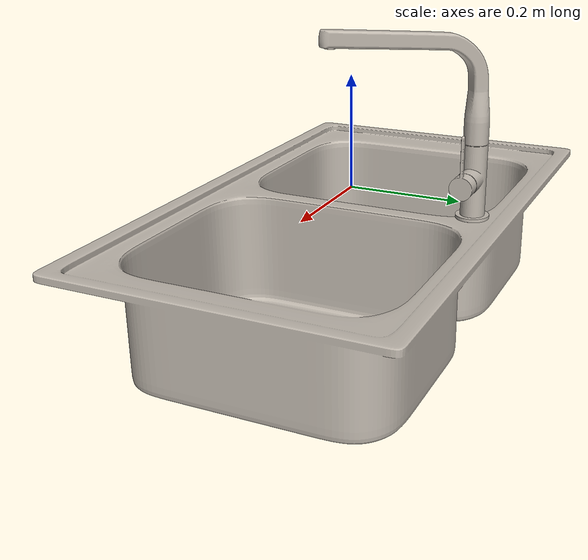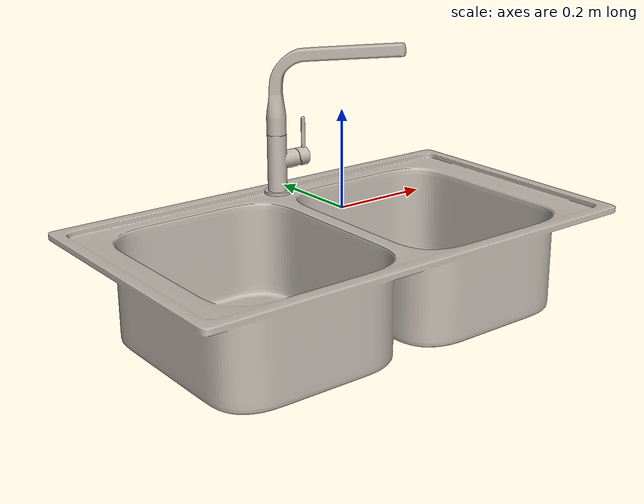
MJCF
<mujoco model="model">
  <asset>
    <texture type="2d" name="image3" file="visuals/image3.png"/>
    <texture type="2d" name="image0" file="visuals/image0.png"/>
    <material name="Faucet" texture="image3" specular="0.5" shininess="0.25"/>
    <material name="Sink_Part1" texture="image0" specular="0.5" shininess="0.25"/>
    <material name="Sink_Part2" texture="image0" specular="0.5" shininess="0.25"/>
    <mesh file="visuals/model_0.obj" name="model_0_vis" scale="1 1 1"/>
    <mesh file="visuals/model_1.obj" name="model_1_vis" scale="1 1 1"/>
    <mesh file="visuals/model_2.obj" name="model_2_vis" scale="1 1 1"/>
    <mesh file="visuals/spout_0.obj" name="spout_0_vis" scale="1 1 1"/>
    <mesh file="visuals/handle_0.obj" name="handle_0_vis" scale="1 1 1"/>
  </asset>
  <default>
    <default class="visual">
      <geom conaffinity="0" contype="0" group="1" type="mesh"/>
    </default>
    <default class="collision">
      <geom group="0" rgba="0.5 0 0 0.5" solimp="0.998 0.998 0.001" solref="0.001 2"/>
    </default>
    <default class="region">
      <geom group="1" conaffinity="0" contype="0" rgba="0 1 0 0"/>
    </default>
  </default>
  <worldbody>
    <body>
      <!-- exterior bounding box points -->
      <!-- interior bounding box points -->
      <body name="object">
        <geom solimp="0.998 0.998 0.001" solref="0.001 1" density="100" friction="0.95 0.3 0.1" type="mesh" mesh="model_0_vis" material="Sink_Part2" class="visual"/>
        <geom solimp="0.998 0.998 0.001" solref="0.001 1" density="100" friction="0.95 0.3 0.1" type="mesh" mesh="model_1_vis" material="Sink_Part1" class="visual"/>
        <geom solimp="0.998 0.998 0.001" solref="0.001 1" density="100" friction="0.95 0.3 0.1" type="mesh" mesh="model_2_vis" material="Faucet" class="visual"/>
        <body name="spout">
          <!--Add Joint Here-->
          <geom solimp="0.998 0.998 0.001" solref="0.001 1" density="100" friction="0.95 0.3 0.1" type="mesh" mesh="spout_0_vis" material="Faucet" class="visual"/>
        </body>
        <body name="handle">
          <!--Add Joint Here-->
          <geom solimp="0.998 0.998 0.001" solref="0.001 1" density="100" friction="0.95 0.3 0.1" type="mesh" mesh="handle_0_vis" material="Faucet" class="visual"/>
        </body>
        <geom class="region" name="reg_main" type="box" pos="0.0 0.0 0.0" size="0.0001 0.0001 0.0001"/>
        <geom class="region" name="reg_basin" type="box" pos="0.0 0.0 0.0" size="0.0001 0.0001 0.0001"/>
      </body>
    </body>
  </worldbody>
</mujoco>
